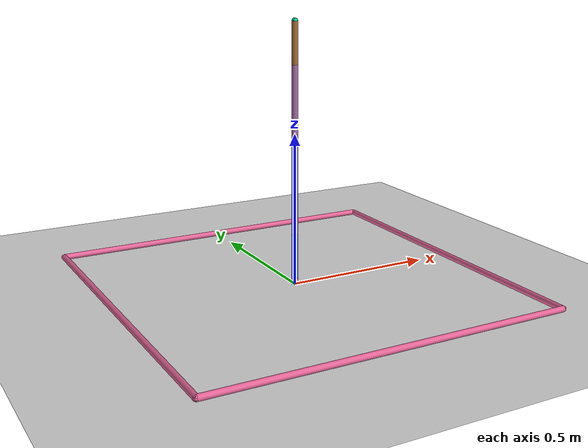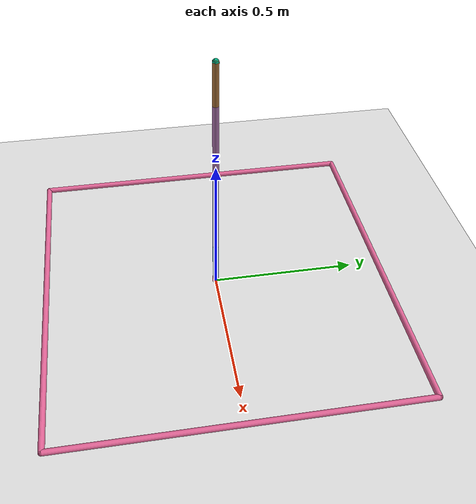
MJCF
<mujoco model="reacher">
	<compiler angle="radian" inertiafromgeom="true"/>
	<default>
		<joint armature="1" damping="1" limited="true"/>
		<geom contype="0" friction="1 0.1 0.1" rgba="0.7 0.7 0 1"/>
	</default>

	<option gravity="0 0 -9.81" integrator="RK4" timestep="0.01"/>
	<worldbody>
		<!-- Arena -->
		<geom conaffinity="0" contype="0" name="ground" pos="0 0 0" rgba="0.9 0.9 0.9 1" size="1 1 10" type="plane"/>
		<geom conaffinity="0" fromto="-.6 -.6 .01 .6 -.6 .01" name="sideS" rgba="0.9 0.4 0.6 1" size=".01" type="capsule"/>
		<geom conaffinity="0" fromto=" .6 -.6 .01 .6  .6 .01" name="sideE" rgba="0.9 0.4 0.6 1" size=".01" type="capsule"/>
		<geom conaffinity="0" fromto="-.6  .6 .01 .6  .6 .01" name="sideN" rgba="0.9 0.4 0.6 1" size=".01" type="capsule"/>
		<geom conaffinity="0" fromto="-.6 -.6 .01 -.6 .6 .01" name="sideW" rgba="0.9 0.4 0.6 1" size=".01" type="capsule"/>

		<!-- Arm -->
		<geom conaffinity="0" contype="0" fromto="0 0 0 0 0 0.02" name="root" rgba="0.9 0.4 0.6 1" size=".011" type="cylinder"/>

		<!-- pos is body start position -->
		<body name="body0" pos="0 0 .01">
			<joint axis="0 0 1" limited="true" name="joint0" pos="0 0 0" range="-3.14 3.14" type="hinge"/>
			<!-- fromto is body start position to end position => geom size -->
			<geom fromto="0 0 0 0 0 0.16" name="link0" rgba="0.2 0.4 0.6 1" size=".01" type="capsule"/>

			<body name="body1" pos="0 0 .16">
				<joint axis="0 1 0" limited="true" name="joint1" pos="0 0 0" range="-1.57 1.57" type="hinge"/>
				<geom fromto="0 0 0 0 0 0.29" name="link1" rgba="0.4 0.4 0.6 1" size=".01" type="capsule"/>

				<body name="body2" pos="0 0 0.29">
				<joint axis="0 1 0" limited="true" name="joint2" pos="0 0 0" range="-1.57 1.57" type="hinge"/>
				<geom fromto="0 0 0 0 0 0.26" name="link2" rgba="0.6 0.4 0.6 1" size=".01" type="capsule"/>

					<body name="body3" pos="0 0 0.13">
					<joint axis="0 0 1" limited="true" name="joint3" pos="0 0 0" range="-3.14 3.14" type="hinge"/>

						<body name="body4" pos="0 0 0.13">
						<joint axis="0 1 0" limited="true" name="joint4" pos="0 0 0" range="-1.57 1.57" type="hinge"/>
						<geom fromto="0 0 0 0 0 0.134" name="link4" rgba="0.6 0.4 0.2 1" size=".01" type="capsule"/>

							<body name="body5" pos="0 0 0.1">
							<joint axis="0 0 1" limited="true" name="joint5" pos="0 0 0" range="-3.14 3.14" type="hinge"/>

								<!-- End-Effort -->
								<body name="fingertip" pos="0 0 0.034">
									<geom contype="0" name="fingertip" pos="0 0 0" rgba="0.0 0.8 0.6 1" size=".01" type="sphere"/>
								</body>

							</body>
						</body>
					</body>
				</body>
			</body>
		</body>

		<!-- Target -->
		<body name="target" pos="0 0 .01">
			<joint armature="0" axis="1 0 0" damping="0" limited="true" name="target_x" pos="0 0 0" range="-.5 .5" stiffness="0" type="slide"/>
			<joint armature="0" axis="0 1 0" damping="0" limited="true" name="target_y" pos="0 0 0" range="-.5 .5" stiffness="0" type="slide"/>
			<joint armature="0" axis="0 0 1" damping="0" limited="true" name="target_z" pos="0 0 0" range="0.0 .1" stiffness="0" type="slide"/>
			<geom conaffinity="0" contype="0" name="target" pos="0 0 0" rgba="0.9 0.2 0.2 1" size=".009" type="sphere"/>
		</body>
	</worldbody>

	<actuator>
		<motor ctrllimited="true" ctrlrange="-1.0 1.0" gear="600.0" joint="joint0"/>
		<motor ctrllimited="true" ctrlrange="-1.0 1.0" gear="600.0" joint="joint1"/>
		<motor ctrllimited="true" ctrlrange="-1.0 1.0" gear="400.0" joint="joint2"/>
		<motor ctrllimited="true" ctrlrange="-1.0 1.0" gear="400.0" joint="joint3"/>
		<motor ctrllimited="true" ctrlrange="-1.0 1.0" gear="200.0" joint="joint4"/>
		<motor ctrllimited="true" ctrlrange="-1.0 1.0" gear="200.0" joint="joint5"/>
	</actuator>
</mujoco>
